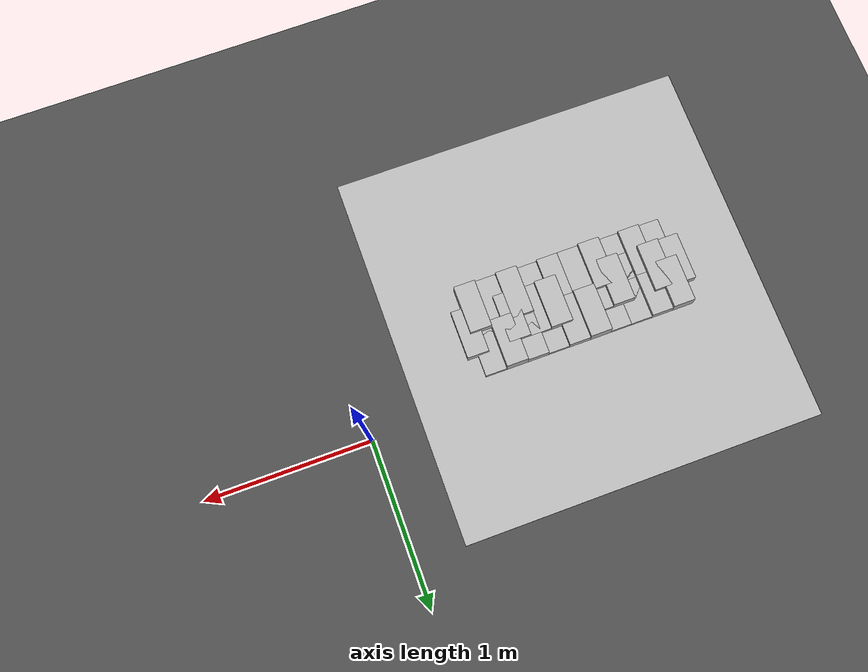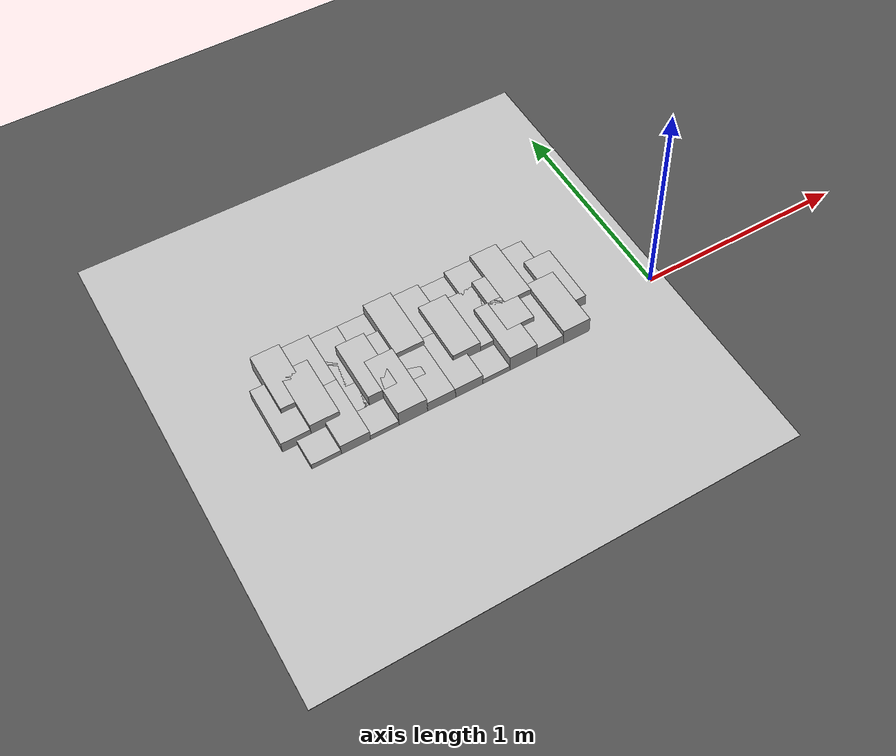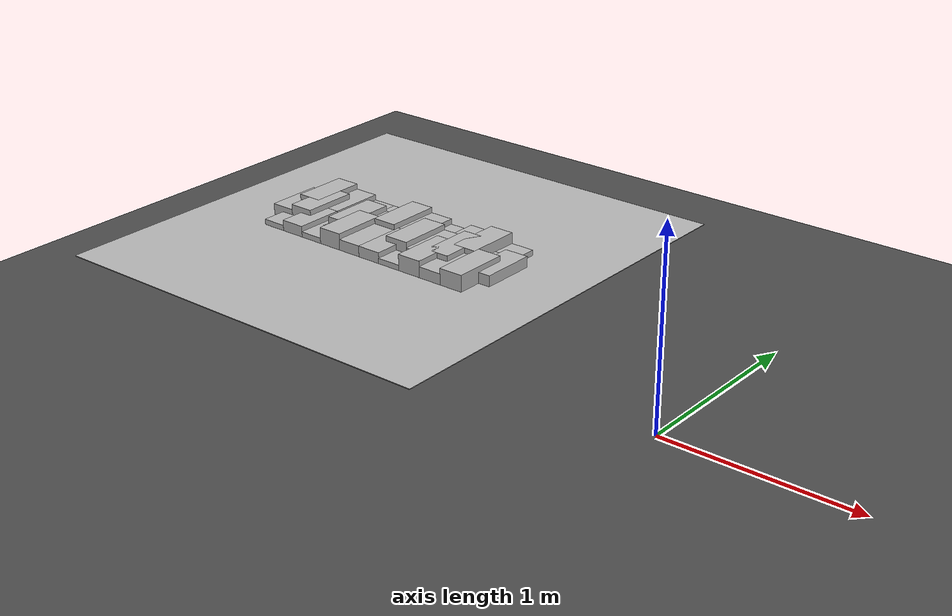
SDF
<sdf version="1.6">
 <world name="default">
  <model name="ground_plane">
   <static>1</static>
   <link name="link">
    <collision name="collision">
     <geometry><plane><normal>0 0 1</normal><size>100 100</size></plane></geometry>
     <surface><friction><ode><mu>100</mu><mu2>50</mu2></ode></friction></surface>
    </collision>
    <visual name="visual">
     <cast_shadows>0</cast_shadows>
     <geometry><plane><normal>0 0 1</normal><size>100 100</size></plane></geometry>
     <material>
      <script><uri>file://media/materials/scripts/gazebo.material</uri><name>Gazebo/Grey</name></script>
     </material>
    </visual>
   </link>
  </model>
  <model name="frc2016_roughterrain_0">
   <link name="link_clone_5">
    <pose>-1.14965 -0.263323 -0.073164 0 -0 0</pose>
    <inertial>
     <inertia><ixx>nan</ixx><ixy>0</ixy><ixz>0</ixz><iyy>nan</iyy><iyz>0</iyz><izz>nan</izz></inertia>
     <mass>0</mass>
    </inertial>
    <visual name="row1_block6_lg">
     <pose>-0.05715 0.1143 0.12238 0 -0 0</pose>
     <geometry><box><size>0.115452 0.257474 0.0762</size></box></geometry>
     <material><shader type="pixel"/></material>
    </visual>
    <visual name="row1_block2_lg">
     <pose>0.40005 0.1143 0.12238 0 -0 0</pose>
     <geometry><box><size>0.115452 0.257474 0.0762</size></box></geometry>
     <material><shader type="pixel"/></material>
    </visual>
    <visual name="row1_block4_sm">
     <pose>0.17145 0.1143 0.09698 0 -0 0</pose>
     <geometry><box><size>0.115452 0.257474 0.0254</size></box></geometry>
     <material><shader type="pixel"/></material>
    </visual>
    <visual name="row1_block5_md">
     <pose>0.05715 0.1143 0.10968 0 -0 0</pose>
     <geometry><box><size>0.115452 0.257474 0.0508</size></box></geometry>
     <material><shader type="pixel"/></material>
    </visual>
    <visual name="row1_block3_md">
     <pose>0.28575 0.1143 0.10968 0 -0 0</pose>
     <geometry><box><size>0.115452 0.257474 0.0508</size></box></geometry>
     <material><shader type="pixel"/></material>
    </visual>
    <visual name="platform">
     <pose>0 0 0.08269 0 -0 0</pose>
     <geometry><box><size>1.91826 2.01688 0.003175</size></box></geometry>
     <material><shader type="pixel"/></material>
    </visual>
    <visual name="row1_block1_sm">
     <pose>0.51435 0.1143 0.09698 0 -0 0</pose>
     <geometry><box><size>0.115452 0.257474 0.0254</size></box></geometry>
     <material><shader type="pixel"/></material>
    </visual>
    <visual name="row1_block8_sm">
     <pose>-0.28575 0.1143 0.09698 0 -0 0</pose>
     <geometry><box><size>0.115452 0.257474 0.0254</size></box></geometry>
     <material><shader type="pixel"/></material>
    </visual>
    <visual name="row1_block7_sm">
     <pose>-0.17145 0.1143 0.09698 0 -0 0</pose>
     <geometry><box><size>0.115452 0.257474 0.0254</size></box></geometry>
     <material><shader type="pixel"/></material>
    </visual>
    <visual name="row1_block9_md">
     <pose>-0.40005 0.1143 0.10968 0 -0 0</pose>
     <geometry><box><size>0.115452 0.257474 0.0508</size></box></geometry>
     <material><shader type="pixel"/></material>
    </visual>
    <visual name="row1_block10_lg">
     <pose>-0.51435 0.1143 0.12238 0 -0 0</pose>
     <geometry><box><size>0.115452 0.257474 0.0762</size></box></geometry>
     <material><shader type="pixel"/></material>
    </visual>
    <visual name="row2_block1_md">
     <pose>0.5715 0 0.10968 0 -0 0</pose>
     <geometry><box><size>0.115452 0.257474 0.0508</size></box></geometry>
     <material><shader type="pixel"/></material>
    </visual>
    <visual name="row2_block2_sm">
     <pose>0.4572 0 0.09698 0 -0 0</pose>
     <geometry><box><size>0.115452 0.257474 0.0254</size></box></geometry>
     <material><shader type="pixel"/></material>
    </visual>
    <visual name="row2_block3_lg">
     <pose>0.3429 0 0.12238 0 -0 0</pose>
     <geometry><box><size>0.115452 0.257474 0.0762</size></box></geometry>
     <material><shader type="pixel"/></material>
    </visual>
    <visual name="row2_block4_md">
     <pose>0.2286 0 0.10968 0 -0 0</pose>
     <geometry><box><size>0.115452 0.257474 0.0508</size></box></geometry>
     <material><shader type="pixel"/></material>
    </visual>
    <visual name="row2_block5_lg">
     <pose>0.1143 0 0.12238 0 -0 0</pose>
     <geometry><box><size>0.115452 0.257474 0.0762</size></box></geometry>
     <material><shader type="pixel"/></material>
    </visual>
    <visual name="row2_block6_sm">
     <pose>0 0 0.09698 0 -0 0</pose>
     <geometry><box><size>0.115452 0.257474 0.0254</size></box></geometry>
     <material><shader type="pixel"/></material>
    </visual>
    <visual name="row2_block7_md">
     <pose>-0.1143 0 0.10968 0 -0 0</pose>
     <geometry><box><size>0.115452 0.257474 0.0508</size></box></geometry>
     <material><shader type="pixel"/></material>
    </visual>
    <visual name="row2_block8_lg">
     <pose>-0.2286 0 0.12238 0 -0 0</pose>
     <geometry><box><size>0.115452 0.257474 0.0762</size></box></geometry>
     <material><shader type="pixel"/></material>
    </visual>
    <visual name="row2_block9_sm">
     <pose>-0.3429 0 0.09698 0 -0 0</pose>
     <geometry><box><size>0.115452 0.257474 0.0254</size></box></geometry>
     <material><shader type="pixel"/></material>
    </visual>
    <visual name="row2_block10_lg">
     <pose>-0.4572 0 0.12238 0 -0 0</pose>
     <geometry><box><size>0.115452 0.257474 0.0762</size></box></geometry>
     <material><shader type="pixel"/></material>
    </visual>
    <visual name="row2_block11_md">
     <pose>-0.5715 0 0.10968 0 -0 0</pose>
     <geometry><box><size>0.115452 0.257474 0.0508</size></box></geometry>
     <material><shader type="pixel"/></material>
    </visual>
    <visual name="row3_block2_md">
     <pose>0.40005 -0.1143 0.10968 0 -0 0</pose>
     <geometry><box><size>0.115452 0.257474 0.0508</size></box></geometry>
     <material><shader type="pixel"/></material>
    </visual>
    <visual name="row3_block1_lg">
     <pose>0.51435 -0.1143 0.12238 0 -0 0</pose>
     <geometry><box><size>0.115452 0.257474 0.0762</size></box></geometry>
     <material><shader type="pixel"/></material>
    </visual>
    <visual name="row3_block3_lg">
     <pose>0.28575 -0.1143 0.12238 0 -0 0</pose>
     <geometry><box><size>0.115452 0.257474 0.0762</size></box></geometry>
     <material><shader type="pixel"/></material>
    </visual>
    <visual name="row3_block4_sm">
     <pose>0.17145 -0.1143 0.09698 0 -0 0</pose>
     <geometry><box><size>0.115452 0.257474 0.0254</size></box></geometry>
     <material><shader type="pixel"/></material>
    </visual>
    <visual name="row3_block5_md">
     <pose>0.05715 -0.1143 0.10968 0 -0 0</pose>
     <geometry><box><size>0.115452 0.257474 0.0508</size></box></geometry>
     <material><shader type="pixel"/></material>
    </visual>
    <visual name="row3_block6_md">
     <pose>-0.05715 -0.1143 0.10968 0 -0 0</pose>
     <geometry><box><size>0.115452 0.257474 0.0508</size></box></geometry>
     <material><shader type="pixel"/></material>
    </visual>
    <visual name="row3_block8_sm">
     <pose>-0.28575 -0.1143 0.09698 0 -0 0</pose>
     <geometry><box><size>0.115452 0.257474 0.0254</size></box></geometry>
     <material><shader type="pixel"/></material>
    </visual>
    <visual name="row3_block7_lg">
     <pose>-0.17145 -0.1143 0.12238 0 -0 0</pose>
     <geometry><box><size>0.115452 0.257474 0.0762</size></box></geometry>
     <material><shader type="pixel"/></material>
    </visual>
    <visual name="row3_block10_sm">
     <pose>-0.51435 -0.1143 0.09698 0 -0 0</pose>
     <geometry><box><size>0.115452 0.257474 0.0254</size></box></geometry>
     <material><shader type="pixel"/></material>
    </visual>
    <visual name="row3_block9_md">
     <pose>-0.40005 -0.1143 0.10968 0 -0 0</pose>
     <geometry><box><size>0.115452 0.257474 0.0508</size></box></geometry>
     <material><shader type="pixel"/></material>
    </visual>
    <collision name="row1_block6_lg_0">
     <pose>-0.05715 0.1143 0.12238 0 -0 0</pose>
     <geometry><box><size>0.115452 0.257474 0.0762</size></box></geometry>
     <surface>
      <friction>
       <ode><mu>1</mu><mu2>1</mu2><fdir1>0 0 0</fdir1><slip1>0</slip1><slip2>0</slip2></ode>
       <torsional>
        <coefficient>1</coefficient>
        <patch_radius>0</patch_radius>
        <surface_radius>0</surface_radius>
        <use_patch_radius>1</use_patch_radius>
        <ode><slip>0</slip></ode>
       </torsional>
      </friction>
      <bounce><restitution_coefficient>0</restitution_coefficient><threshold>1e+06</threshold></bounce>
      <contact>
       <collide_without_contact>0</collide_without_contact>
       <collide_without_contact_bitmask>1</collide_without_contact_bitmask>
       <collide_bitmask>1</collide_bitmask>
       <ode>
        <soft_cfm>0</soft_cfm>
        <soft_erp>0.2</soft_erp>
        <kp>1e+13</kp>
        <kd>1</kd>
        <max_vel>0.01</max_vel>
        <min_depth>0</min_depth>
       </ode>
       <bullet>
        <split_impulse>1</split_impulse>
        <split_impulse_penetration_threshold>-0.01</split_impulse_penetration_threshold>
        <soft_cfm>0</soft_cfm>
        <soft_erp>0.2</soft_erp>
        <kp>1e+13</kp>
        <kd>1</kd>
       </bullet>
      </contact>
     </surface>
    </collision>
    <collision name="row2_block3_lg_0">
     <pose>0.3429 0 0.12238 0 -0 0</pose>
     <geometry><box><size>0.115452 0.257474 0.0762</size></box></geometry>
     <surface>
      <friction>
       <ode><mu>1</mu><mu2>1</mu2><fdir1>0 0 0</fdir1><slip1>0</slip1><slip2>0</slip2></ode>
       <torsional>
        <coefficient>1</coefficient>
        <patch_radius>0</patch_radius>
        <surface_radius>0</surface_radius>
        <use_patch_radius>1</use_patch_radius>
        <ode><slip>0</slip></ode>
       </torsional>
      </friction>
      <bounce><restitution_coefficient>0</restitution_coefficient><threshold>1e+06</threshold></bounce>
      <contact>
       <collide_without_contact>0</collide_without_contact>
       <collide_without_contact_bitmask>1</collide_without_contact_bitmask>
       <collide_bitmask>1</collide_bitmask>
       <ode>
        <soft_cfm>0</soft_cfm>
        <soft_erp>0.2</soft_erp>
        <kp>1e+13</kp>
        <kd>1</kd>
        <max_vel>0.01</max_vel>
        <min_depth>0</min_depth>
       </ode>
       <bullet>
        <split_impulse>1</split_impulse>
        <split_impulse_penetration_threshold>-0.01</split_impulse_penetration_threshold>
        <soft_cfm>0</soft_cfm>
        <soft_erp>0.2</soft_erp>
        <kp>1e+13</kp>
        <kd>1</kd>
       </bullet>
      </contact>
     </surface>
    </collision>
    <collision name="row2_block6_sm_0">
     <pose>0 0 0.09698 0 -0 0</pose>
     <geometry><box><size>0.115452 0.257474 0.0254</size></box></geometry>
     <surface>
      <friction>
       <ode><mu>1</mu><mu2>1</mu2><fdir1>0 0 0</fdir1><slip1>0</slip1><slip2>0</slip2></ode>
       <torsional>
        <coefficient>1</coefficient>
        <patch_radius>0</patch_radius>
        <surface_radius>0</surface_radius>
        <use_patch_radius>1</use_patch_radius>
        <ode><slip>0</slip></ode>
       </torsional>
      </friction>
      <bounce><restitution_coefficient>0</restitution_coefficient><threshold>1e+06</threshold></bounce>
      <contact>
       <collide_without_contact>0</collide_without_contact>
       <collide_without_contact_bitmask>1</collide_without_contact_bitmask>
       <collide_bitmask>1</collide_bitmask>
       <ode>
        <soft_cfm>0</soft_cfm>
        <soft_erp>0.2</soft_erp>
        <kp>1e+13</kp>
        <kd>1</kd>
        <max_vel>0.01</max_vel>
        <min_depth>0</min_depth>
       </ode>
       <bullet>
        <split_impulse>1</split_impulse>
        <split_impulse_penetration_threshold>-0.01</split_impulse_penetration_threshold>
        <soft_cfm>0</soft_cfm>
        <soft_erp>0.2</soft_erp>
        <kp>1e+13</kp>
        <kd>1</kd>
       </bullet>
      </contact>
     </surface>
    </collision>
    <collision name="row2_block5_lg_0">
     <pose>0.1143 0 0.12238 0 -0 0</pose>
     <geometry><box><size>0.115452 0.257474 0.0762</size></box></geometry>
     <surface>
      <friction>
       <ode><mu>1</mu><mu2>1</mu2><fdir1>0 0 0</fdir1><slip1>0</slip1><slip2>0</slip2></ode>
       <torsional>
        <coefficient>1</coefficient>
        <patch_radius>0</patch_radius>
        <surface_radius>0</surface_radius>
        <use_patch_radius>1</use_patch_radius>
        <ode><slip>0</slip></ode>
       </torsional>
      </friction>
      <bounce><restitution_coefficient>0</restitution_coefficient><threshold>1e+06</threshold></bounce>
      <contact>
       <collide_without_contact>0</collide_without_contact>
       <collide_without_contact_bitmask>1</collide_without_contact_bitmask>
       <collide_bitmask>1</collide_bitmask>
       <ode>
        <soft_cfm>0</soft_cfm>
        <soft_erp>0.2</soft_erp>
        <kp>1e+13</kp>
        <kd>1</kd>
        <max_vel>0.01</max_vel>
        <min_depth>0</min_depth>
       </ode>
       <bullet>
        <split_impulse>1</split_impulse>
        <split_impulse_penetration_threshold>-0.01</split_impulse_penetration_threshold>
        <soft_cfm>0</soft_cfm>
        <soft_erp>0.2</soft_erp>
        <kp>1e+13</kp>
        <kd>1</kd>
       </bullet>
      </contact>
     </surface>
    </collision>
    <collision name="platform_0">
     <pose>0 0 0.08269 0 -0 0</pose>
     <geometry><box><size>1.91826 2.01688 0.003175</size></box></geometry>
     <surface>
      <friction>
       <ode><mu>1</mu><mu2>1</mu2><fdir1>0 0 0</fdir1><slip1>0</slip1><slip2>0</slip2></ode>
       <torsional>
        <coefficient>1</coefficient>
        <patch_radius>0</patch_radius>
        <surface_radius>0</surface_radius>
        <use_patch_radius>1</use_patch_radius>
        <ode><slip>0</slip></ode>
       </torsional>
      </friction>
      <bounce><restitution_coefficient>0</restitution_coefficient><threshold>1e+06</threshold></bounce>
      <contact>
       <collide_without_contact>0</collide_without_contact>
       <collide_without_contact_bitmask>1</collide_without_contact_bitmask>
       <collide_bitmask>1</collide_bitmask>
       <ode>
        <soft_cfm>0</soft_cfm>
        <soft_erp>0.2</soft_erp>
        <kp>1e+13</kp>
        <kd>1</kd>
        <max_vel>0.01</max_vel>
        <min_depth>0</min_depth>
       </ode>
       <bullet>
        <split_impulse>1</split_impulse>
        <split_impulse_penetration_threshold>-0.01</split_impulse_penetration_threshold>
        <soft_cfm>0</soft_cfm>
        <soft_erp>0.2</soft_erp>
        <kp>1e+13</kp>
        <kd>1</kd>
       </bullet>
      </contact>
     </surface>
    </collision>
    <collision name="row1_block1_sm_0">
     <pose>0.51435 0.1143 0.09698 0 -0 0</pose>
     <geometry><box><size>0.115452 0.257474 0.0254</size></box></geometry>
     <surface>
      <friction>
       <ode><mu>1</mu><mu2>1</mu2><fdir1>0 0 0</fdir1><slip1>0</slip1><slip2>0</slip2></ode>
       <torsional>
        <coefficient>1</coefficient>
        <patch_radius>0</patch_radius>
        <surface_radius>0</surface_radius>
        <use_patch_radius>1</use_patch_radius>
        <ode><slip>0</slip></ode>
       </torsional>
      </friction>
      <bounce><restitution_coefficient>0</restitution_coefficient><threshold>1e+06</threshold></bounce>
      <contact>
       <collide_without_contact>0</collide_without_contact>
       <collide_without_contact_bitmask>1</collide_without_contact_bitmask>
       <collide_bitmask>1</collide_bitmask>
       <ode>
        <soft_cfm>0</soft_cfm>
        <soft_erp>0.2</soft_erp>
        <kp>1e+13</kp>
        <kd>1</kd>
        <max_vel>0.01</max_vel>
        <min_depth>0</min_depth>
       </ode>
       <bullet>
        <split_impulse>1</split_impulse>
        <split_impulse_penetration_threshold>-0.01</split_impulse_penetration_threshold>
        <soft_cfm>0</soft_cfm>
        <soft_erp>0.2</soft_erp>
        <kp>1e+13</kp>
        <kd>1</kd>
       </bullet>
      </contact>
     </surface>
    </collision>
    <collision name="row1_block3_md_0">
     <pose>0.28575 0.1143 0.10968 0 -0 0</pose>
     <geometry><box><size>0.115452 0.257474 0.0508</size></box></geometry>
     <surface>
      <friction>
       <ode><mu>1</mu><mu2>1</mu2><fdir1>0 0 0</fdir1><slip1>0</slip1><slip2>0</slip2></ode>
       <torsional>
        <coefficient>1</coefficient>
        <patch_radius>0</patch_radius>
        <surface_radius>0</surface_radius>
        <use_patch_radius>1</use_patch_radius>
        <ode><slip>0</slip></ode>
       </torsional>
      </friction>
      <bounce><restitution_coefficient>0</restitution_coefficient><threshold>1e+06</threshold></bounce>
      <contact>
       <collide_without_contact>0</collide_without_contact>
       <collide_without_contact_bitmask>1</collide_without_contact_bitmask>
       <collide_bitmask>1</collide_bitmask>
       <ode>
        <soft_cfm>0</soft_cfm>
        <soft_erp>0.2</soft_erp>
        <kp>1e+13</kp>
        <kd>1</kd>
        <max_vel>0.01</max_vel>
        <min_depth>0</min_depth>
       </ode>
       <bullet>
        <split_impulse>1</split_impulse>
        <split_impulse_penetration_threshold>-0.01</split_impulse_penetration_threshold>
        <soft_cfm>0</soft_cfm>
        <soft_erp>0.2</soft_erp>
        <kp>1e+13</kp>
        <kd>1</kd>
       </bullet>
      </contact>
     </surface>
    </collision>
    <collision name="row1_block2_lg_0">
     <pose>0.40005 0.1143 0.12238 0 -0 0</pose>
     <geometry><box><size>0.115452 0.257474 0.0762</size></box></geometry>
     <surface>
      <friction>
       <ode><mu>1</mu><mu2>1</mu2><fdir1>0 0 0</fdir1><slip1>0</slip1><slip2>0</slip2></ode>
       <torsional>
        <coefficient>1</coefficient>
        <patch_radius>0</patch_radius>
        <surface_radius>0</surface_radius>
        <use_patch_radius>1</use_patch_radius>
        <ode><slip>0</slip></ode>
       </torsional>
      </friction>
      <bounce><restitution_coefficient>0</restitution_coefficient><threshold>1e+06</threshold></bounce>
      <contact>
       <collide_without_contact>0</collide_without_contact>
       <collide_without_contact_bitmask>1</collide_without_contact_bitmask>
       <collide_bitmask>1</collide_bitmask>
       <ode>
        <soft_cfm>0</soft_cfm>
        <soft_erp>0.2</soft_erp>
        <kp>1e+13</kp>
        <kd>1</kd>
        <max_vel>0.01</max_vel>
        <min_depth>0</min_depth>
       </ode>
       <bullet>
        <split_impulse>1</split_impulse>
        <split_impulse_penetration_threshold>-0.01</split_impulse_penetration_threshold>
        <soft_cfm>0</soft_cfm>
        <soft_erp>0.2</soft_erp>
        <kp>1e+13</kp>
        <kd>1</kd>
       </bullet>
      </contact>
     </surface>
    </collision>
    <collision name="row1_block5_md_0">
     <pose>0.05715 0.1143 0.10968 0 -0 0</pose>
     <geometry><box><size>0.115452 0.257474 0.0508</size></box></geometry>
     <surface>
      <friction>
       <ode><mu>1</mu><mu2>1</mu2><fdir1>0 0 0</fdir1><slip1>0</slip1><slip2>0</slip2></ode>
       <torsional>
        <coefficient>1</coefficient>
        <patch_radius>0</patch_radius>
        <surface_radius>0</surface_radius>
        <use_patch_radius>1</use_patch_radius>
        <ode><slip>0</slip></ode>
       </torsional>
      </friction>
      <bounce><restitution_coefficient>0</restitution_coefficient><threshold>1e+06</threshold></bounce>
      <contact>
       <collide_without_contact>0</collide_without_contact>
       <collide_without_contact_bitmask>1</collide_without_contact_bitmask>
       <collide_bitmask>1</collide_bitmask>
       <ode>
        <soft_cfm>0</soft_cfm>
        <soft_erp>0.2</soft_erp>
        <kp>1e+13</kp>
        <kd>1</kd>
        <max_vel>0.01</max_vel>
        <min_depth>0</min_depth>
       </ode>
       <bullet>
        <split_impulse>1</split_impulse>
        <split_impulse_penetration_threshold>-0.01</split_impulse_penetration_threshold>
        <soft_cfm>0</soft_cfm>
        <soft_erp>0.2</soft_erp>
        <kp>1e+13</kp>
        <kd>1</kd>
       </bullet>
      </contact>
     </surface>
    </collision>
    <collision name="row1_block4_sm_0">
     <pose>0.17145 0.1143 0.09698 0 -0 0</pose>
     <geometry><box><size>0.115452 0.257474 0.0254</size></box></geometry>
     <surface>
      <friction>
       <ode><mu>1</mu><mu2>1</mu2><fdir1>0 0 0</fdir1><slip1>0</slip1><slip2>0</slip2></ode>
       <torsional>
        <coefficient>1</coefficient>
        <patch_radius>0</patch_radius>
        <surface_radius>0</surface_radius>
        <use_patch_radius>1</use_patch_radius>
        <ode><slip>0</slip></ode>
       </torsional>
      </friction>
      <bounce><restitution_coefficient>0</restitution_coefficient><threshold>1e+06</threshold></bounce>
      <contact>
       <collide_without_contact>0</collide_without_contact>
       <collide_without_contact_bitmask>1</collide_without_contact_bitmask>
       <collide_bitmask>1</collide_bitmask>
       <ode>
        <soft_cfm>0</soft_cfm>
        <soft_erp>0.2</soft_erp>
        <kp>1e+13</kp>
        <kd>1</kd>
        <max_vel>0.01</max_vel>
        <min_depth>0</min_depth>
       </ode>
       <bullet>
        <split_impulse>1</split_impulse>
        <split_impulse_penetration_threshold>-0.01</split_impulse_penetration_threshold>
        <soft_cfm>0</soft_cfm>
        <soft_erp>0.2</soft_erp>
        <kp>1e+13</kp>
        <kd>1</kd>
       </bullet>
      </contact>
     </surface>
    </collision>
    <collision name="row1_block7_sm_0">
     <pose>-0.17145 0.1143 0.09698 0 -0 0</pose>
     <geometry><box><size>0.115452 0.257474 0.0254</size></box></geometry>
     <surface>
      <friction>
       <ode><mu>1</mu><mu2>1</mu2><fdir1>0 0 0</fdir1><slip1>0</slip1><slip2>0</slip2></ode>
       <torsional>
        <coefficient>1</coefficient>
        <patch_radius>0</patch_radius>
        <surface_radius>0</surface_radius>
        <use_patch_radius>1</use_patch_radius>
        <ode><slip>0</slip></ode>
       </torsional>
      </friction>
      <bounce><restitution_coefficient>0</restitution_coefficient><threshold>1e+06</threshold></bounce>
      <contact>
       <collide_without_contact>0</collide_without_contact>
       <collide_without_contact_bitmask>1</collide_without_contact_bitmask>
       <collide_bitmask>1</collide_bitmask>
       <ode>
        <soft_cfm>0</soft_cfm>
        <soft_erp>0.2</soft_erp>
        <kp>1e+13</kp>
        <kd>1</kd>
        <max_vel>0.01</max_vel>
        <min_depth>0</min_depth>
       </ode>
       <bullet>
        <split_impulse>1</split_impulse>
        <split_impulse_penetration_threshold>-0.01</split_impulse_penetration_threshold>
        <soft_cfm>0</soft_cfm>
        <soft_erp>0.2</soft_erp>
        <kp>1e+13</kp>
        <kd>1</kd>
       </bullet>
      </contact>
     </surface>
    </collision>
    <collision name="row1_block8_sm_0">
     <pose>-0.28575 0.1143 0.09698 0 -0 0</pose>
     <geometry><box><size>0.115452 0.257474 0.0254</size></box></geometry>
     <surface>
      <friction>
       <ode><mu>1</mu><mu2>1</mu2><fdir1>0 0 0</fdir1><slip1>0</slip1><slip2>0</slip2></ode>
       <torsional>
        <coefficient>1</coefficient>
        <patch_radius>0</patch_radius>
        <surface_radius>0</surface_radius>
        <use_patch_radius>1</use_patch_radius>
        <ode><slip>0</slip></ode>
       </torsional>
      </friction>
      <bounce><restitution_coefficient>0</restitution_coefficient><threshold>1e+06</threshold></bounce>
      <contact>
       <collide_without_contact>0</collide_without_contact>
       <collide_without_contact_bitmask>1</collide_without_contact_bitmask>
       <collide_bitmask>1</collide_bitmask>
       <ode>
        <soft_cfm>0</soft_cfm>
        <soft_erp>0.2</soft_erp>
        <kp>1e+13</kp>
        <kd>1</kd>
        <max_vel>0.01</max_vel>
        <min_depth>0</min_depth>
       </ode>
       <bullet>
        <split_impulse>1</split_impulse>
        <split_impulse_penetration_threshold>-0.01</split_impulse_penetration_threshold>
        <soft_cfm>0</soft_cfm>
        <soft_erp>0.2</soft_erp>
        <kp>1e+13</kp>
        <kd>1</kd>
       </bullet>
      </contact>
     </surface>
    </collision>
    <collision name="row1_block10_lg_0">
     <pose>-0.51435 0.1143 0.12238 0 -0 0</pose>
     <geometry><box><size>0.115452 0.257474 0.0762</size></box></geometry>
     <surface>
      <friction>
       <ode><mu>1</mu><mu2>1</mu2><fdir1>0 0 0</fdir1><slip1>0</slip1><slip2>0</slip2></ode>
       <torsional>
        <coefficient>1</coefficient>
        <patch_radius>0</patch_radius>
        <surface_radius>0</surface_radius>
        <use_patch_radius>1</use_patch_radius>
        <ode><slip>0</slip></ode>
       </torsional>
      </friction>
      <bounce><restitution_coefficient>0</restitution_coefficient><threshold>1e+06</threshold></bounce>
      <contact>
       <collide_without_contact>0</collide_without_contact>
       <collide_without_contact_bitmask>1</collide_without_contact_bitmask>
       <collide_bitmask>1</collide_bitmask>
       <ode>
        <soft_cfm>0</soft_cfm>
        <soft_erp>0.2</soft_erp>
        <kp>1e+13</kp>
        <kd>1</kd>
        <max_vel>0.01</max_vel>
        <min_depth>0</min_depth>
       </ode>
       <bullet>
        <split_impulse>1</split_impulse>
        <split_impulse_penetration_threshold>-0.01</split_impulse_penetration_threshold>
        <soft_cfm>0</soft_cfm>
        <soft_erp>0.2</soft_erp>
        <kp>1e+13</kp>
        <kd>1</kd>
       </bullet>
      </contact>
     </surface>
    </collision>
    <collision name="row1_block9_md_0">
     <pose>-0.40005 0.1143 0.10968 0 -0 0</pose>
     <geometry><box><size>0.115452 0.257474 0.0508</size></box></geometry>
     <surface>
      <friction>
       <ode><mu>1</mu><mu2>1</mu2><fdir1>0 0 0</fdir1><slip1>0</slip1><slip2>0</slip2></ode>
       <torsional>
        <coefficient>1</coefficient>
        <patch_radius>0</patch_radius>
        <surface_radius>0</surface_radius>
        <use_patch_radius>1</use_patch_radius>
        <ode><slip>0</slip></ode>
       </torsional>
      </friction>
      <bounce><restitution_coefficient>0</restitution_coefficient><threshold>1e+06</threshold></bounce>
      <contact>
       <collide_without_contact>0</collide_without_contact>
       <collide_without_contact_bitmask>1</collide_without_contact_bitmask>
       <collide_bitmask>1</collide_bitmask>
       <ode>
        <soft_cfm>0</soft_cfm>
        <soft_erp>0.2</soft_erp>
        <kp>1e+13</kp>
        <kd>1</kd>
        <max_vel>0.01</max_vel>
        <min_depth>0</min_depth>
       </ode>
       <bullet>
        <split_impulse>1</split_impulse>
        <split_impulse_penetration_threshold>-0.01</split_impulse_penetration_threshold>
        <soft_cfm>0</soft_cfm>
        <soft_erp>0.2</soft_erp>
        <kp>1e+13</kp>
        <kd>1</kd>
       </bullet>
      </contact>
     </surface>
    </collision>
    <collision name="row2_block4_md_0">
     <pose>0.2286 0 0.10968 0 -0 0</pose>
     <geometry><box><size>0.115452 0.257474 0.0508</size></box></geometry>
     <surface>
      <friction>
       <ode><mu>1</mu><mu2>1</mu2><fdir1>0 0 0</fdir1><slip1>0</slip1><slip2>0</slip2></ode>
       <torsional>
        <coefficient>1</coefficient>
        <patch_radius>0</patch_radius>
        <surface_radius>0</surface_radius>
        <use_patch_radius>1</use_patch_radius>
        <ode><slip>0</slip></ode>
       </torsional>
      </friction>
      <bounce><restitution_coefficient>0</restitution_coefficient><threshold>1e+06</threshold></bounce>
      <contact>
       <collide_without_contact>0</collide_without_contact>
       <collide_without_contact_bitmask>1</collide_without_contact_bitmask>
       <collide_bitmask>1</collide_bitmask>
       <ode>
        <soft_cfm>0</soft_cfm>
        <soft_erp>0.2</soft_erp>
        <kp>1e+13</kp>
        <kd>1</kd>
        <max_vel>0.01</max_vel>
        <min_depth>0</min_depth>
       </ode>
       <bullet>
        <split_impulse>1</split_impulse>
        <split_impulse_penetration_threshold>-0.01</split_impulse_penetration_threshold>
        <soft_cfm>0</soft_cfm>
        <soft_erp>0.2</soft_erp>
        <kp>1e+13</kp>
        <kd>1</kd>
       </bullet>
      </contact>
     </surface>
    </collision>
    <collision name="row2_block1_md_0">
     <pose>0.5715 0 0.10968 0 -0 0</pose>
     <geometry><box><size>0.115452 0.257474 0.0508</size></box></geometry>
     <surface>
      <friction>
       <ode><mu>1</mu><mu2>1</mu2><fdir1>0 0 0</fdir1><slip1>0</slip1><slip2>0</slip2></ode>
       <torsional>
        <coefficient>1</coefficient>
        <patch_radius>0</patch_radius>
        <surface_radius>0</surface_radius>
        <use_patch_radius>1</use_patch_radius>
        <ode><slip>0</slip></ode>
       </torsional>
      </friction>
      <bounce><restitution_coefficient>0</restitution_coefficient><threshold>1e+06</threshold></bounce>
      <contact>
       <collide_without_contact>0</collide_without_contact>
       <collide_without_contact_bitmask>1</collide_without_contact_bitmask>
       <collide_bitmask>1</collide_bitmask>
       <ode>
        <soft_cfm>0</soft_cfm>
        <soft_erp>0.2</soft_erp>
        <kp>1e+13</kp>
        <kd>1</kd>
        <max_vel>0.01</max_vel>
        <min_depth>0</min_depth>
       </ode>
       <bullet>
        <split_impulse>1</split_impulse>
        <split_impulse_penetration_threshold>-0.01</split_impulse_penetration_threshold>
        <soft_cfm>0</soft_cfm>
        <soft_erp>0.2</soft_erp>
        <kp>1e+13</kp>
        <kd>1</kd>
       </bullet>
      </contact>
     </surface>
    </collision>
    <collision name="row2_block2_sm_0">
     <pose>0.4572 0 0.09698 0 -0 0</pose>
     <geometry><box><size>0.115452 0.257474 0.0254</size></box></geometry>
     <surface>
      <friction>
       <ode><mu>1</mu><mu2>1</mu2><fdir1>0 0 0</fdir1><slip1>0</slip1><slip2>0</slip2></ode>
       <torsional>
        <coefficient>1</coefficient>
        <patch_radius>0</patch_radius>
        <surface_radius>0</surface_radius>
        <use_patch_radius>1</use_patch_radius>
        <ode><slip>0</slip></ode>
       </torsional>
      </friction>
      <bounce><restitution_coefficient>0</restitution_coefficient><threshold>1e+06</threshold></bounce>
      <contact>
       <collide_without_contact>0</collide_without_contact>
       <collide_without_contact_bitmask>1</collide_without_contact_bitmask>
       <collide_bitmask>1</collide_bitmask>
       <ode>
        <soft_cfm>0</soft_cfm>
        <soft_erp>0.2</soft_erp>
        <kp>1e+13</kp>
        <kd>1</kd>
        <max_vel>0.01</max_vel>
        <min_depth>0</min_depth>
       </ode>
       <bullet>
        <split_impulse>1</split_impulse>
        <split_impulse_penetration_threshold>-0.01</split_impulse_penetration_threshold>
        <soft_cfm>0</soft_cfm>
        <soft_erp>0.2</soft_erp>
        <kp>1e+13</kp>
        <kd>1</kd>
       </bullet>
      </contact>
     </surface>
    </collision>
    <collision name="row2_block7_md_0">
     <pose>-0.1143 0 0.10968 0 -0 0</pose>
     <geometry><box><size>0.115452 0.257474 0.0508</size></box></geometry>
     <surface>
      <friction>
       <ode><mu>1</mu><mu2>1</mu2><fdir1>0 0 0</fdir1><slip1>0</slip1><slip2>0</slip2></ode>
       <torsional>
        <coefficient>1</coefficient>
        <patch_radius>0</patch_radius>
        <surface_radius>0</surface_radius>
        <use_patch_radius>1</use_patch_radius>
        <ode><slip>0</slip></ode>
       </torsional>
      </friction>
      <bounce><restitution_coefficient>0</restitution_coefficient><threshold>1e+06</threshold></bounce>
      <contact>
       <collide_without_contact>0</collide_without_contact>
       <collide_without_contact_bitmask>1</collide_without_contact_bitmask>
       <collide_bitmask>1</collide_bitmask>
       <ode>
        <soft_cfm>0</soft_cfm>
        <soft_erp>0.2</soft_erp>
        <kp>1e+13</kp>
        <kd>1</kd>
        <max_vel>0.01</max_vel>
        <min_depth>0</min_depth>
       </ode>
       <bullet>
        <split_impulse>1</split_impulse>
        <split_impulse_penetration_threshold>-0.01</split_impulse_penetration_threshold>
        <soft_cfm>0</soft_cfm>
        <soft_erp>0.2</soft_erp>
        <kp>1e+13</kp>
        <kd>1</kd>
       </bullet>
      </contact>
     </surface>
    </collision>
    <collision name="row2_block10_lg_0">
     <pose>-0.4572 0 0.12238 0 -0 0</pose>
     <geometry><box><size>0.115452 0.257474 0.0762</size></box></geometry>
     <surface>
      <friction>
       <ode><mu>1</mu><mu2>1</mu2><fdir1>0 0 0</fdir1><slip1>0</slip1><slip2>0</slip2></ode>
       <torsional>
        <coefficient>1</coefficient>
        <patch_radius>0</patch_radius>
        <surface_radius>0</surface_radius>
        <use_patch_radius>1</use_patch_radius>
        <ode><slip>0</slip></ode>
       </torsional>
      </friction>
      <bounce><restitution_coefficient>0</restitution_coefficient><threshold>1e+06</threshold></bounce>
      <contact>
       <collide_without_contact>0</collide_without_contact>
       <collide_without_contact_bitmask>1</collide_without_contact_bitmask>
       <collide_bitmask>1</collide_bitmask>
       <ode>
        <soft_cfm>0</soft_cfm>
        <soft_erp>0.2</soft_erp>
        <kp>1e+13</kp>
        <kd>1</kd>
        <max_vel>0.01</max_vel>
        <min_depth>0</min_depth>
       </ode>
       <bullet>
        <split_impulse>1</split_impulse>
        <split_impulse_penetration_threshold>-0.01</split_impulse_penetration_threshold>
        <soft_cfm>0</soft_cfm>
        <soft_erp>0.2</soft_erp>
        <kp>1e+13</kp>
        <kd>1</kd>
       </bullet>
      </contact>
     </surface>
    </collision>
    <collision name="row2_block8_lg_0">
     <pose>-0.2286 0 0.12238 0 -0 0</pose>
     <geometry><box><size>0.115452 0.257474 0.0762</size></box></geometry>
     <surface>
      <friction>
       <ode><mu>1</mu><mu2>1</mu2><fdir1>0 0 0</fdir1><slip1>0</slip1><slip2>0</slip2></ode>
       <torsional>
        <coefficient>1</coefficient>
        <patch_radius>0</patch_radius>
        <surface_radius>0</surface_radius>
        <use_patch_radius>1</use_patch_radius>
        <ode><slip>0</slip></ode>
       </torsional>
      </friction>
      <bounce><restitution_coefficient>0</restitution_coefficient><threshold>1e+06</threshold></bounce>
      <contact>
       <collide_without_contact>0</collide_without_contact>
       <collide_without_contact_bitmask>1</collide_without_contact_bitmask>
       <collide_bitmask>1</collide_bitmask>
       <ode>
        <soft_cfm>0</soft_cfm>
        <soft_erp>0.2</soft_erp>
        <kp>1e+13</kp>
        <kd>1</kd>
        <max_vel>0.01</max_vel>
        <min_depth>0</min_depth>
       </ode>
       <bullet>
        <split_impulse>1</split_impulse>
        <split_impulse_penetration_threshold>-0.01</split_impulse_penetration_threshold>
        <soft_cfm>0</soft_cfm>
        <soft_erp>0.2</soft_erp>
        <kp>1e+13</kp>
        <kd>1</kd>
       </bullet>
      </contact>
     </surface>
    </collision>
    <collision name="row2_block9_sm_0">
     <pose>-0.3429 0 0.09698 0 -0 0</pose>
     <geometry><box><size>0.115452 0.257474 0.0254</size></box></geometry>
     <surface>
      <friction>
       <ode><mu>1</mu><mu2>1</mu2><fdir1>0 0 0</fdir1><slip1>0</slip1><slip2>0</slip2></ode>
       <torsional>
        <coefficient>1</coefficient>
        <patch_radius>0</patch_radius>
        <surface_radius>0</surface_radius>
        <use_patch_radius>1</use_patch_radius>
        <ode><slip>0</slip></ode>
       </torsional>
      </friction>
      <bounce><restitution_coefficient>0</restitution_coefficient><threshold>1e+06</threshold></bounce>
      <contact>
       <collide_without_contact>0</collide_without_contact>
       <collide_without_contact_bitmask>1</collide_without_contact_bitmask>
       <collide_bitmask>1</collide_bitmask>
       <ode>
        <soft_cfm>0</soft_cfm>
        <soft_erp>0.2</soft_erp>
        <kp>1e+13</kp>
        <kd>1</kd>
        <max_vel>0.01</max_vel>
        <min_depth>0</min_depth>
       </ode>
       <bullet>
        <split_impulse>1</split_impulse>
        <split_impulse_penetration_threshold>-0.01</split_impulse_penetration_threshold>
        <soft_cfm>0</soft_cfm>
        <soft_erp>0.2</soft_erp>
        <kp>1e+13</kp>
        <kd>1</kd>
       </bullet>
      </contact>
     </surface>
    </collision>
    <collision name="row2_block11_md_0">
     <pose>-0.5715 0 0.10968 0 -0 0</pose>
     <geometry><box><size>0.115452 0.257474 0.0508</size></box></geometry>
     <surface>
      <friction>
       <ode><mu>1</mu><mu2>1</mu2><fdir1>0 0 0</fdir1><slip1>0</slip1><slip2>0</slip2></ode>
       <torsional>
        <coefficient>1</coefficient>
        <patch_radius>0</patch_radius>
        <surface_radius>0</surface_radius>
        <use_patch_radius>1</use_patch_radius>
        <ode><slip>0</slip></ode>
       </torsional>
      </friction>
      <bounce><restitution_coefficient>0</restitution_coefficient><threshold>1e+06</threshold></bounce>
      <contact>
       <collide_without_contact>0</collide_without_contact>
       <collide_without_contact_bitmask>1</collide_without_contact_bitmask>
       <collide_bitmask>1</collide_bitmask>
       <ode>
        <soft_cfm>0</soft_cfm>
        <soft_erp>0.2</soft_erp>
        <kp>1e+13</kp>
        <kd>1</kd>
        <max_vel>0.01</max_vel>
        <min_depth>0</min_depth>
       </ode>
       <bullet>
        <split_impulse>1</split_impulse>
        <split_impulse_penetration_threshold>-0.01</split_impulse_penetration_threshold>
        <soft_cfm>0</soft_cfm>
        <soft_erp>0.2</soft_erp>
        <kp>1e+13</kp>
        <kd>1</kd>
       </bullet>
      </contact>
     </surface>
    </collision>
    <collision name="row3_block3_lg_0">
     <pose>0.28575 -0.1143 0.12238 0 -0 0</pose>
     <geometry><box><size>0.115452 0.257474 0.0762</size></box></geometry>
     <surface>
      <friction>
       <ode><mu>1</mu><mu2>1</mu2><fdir1>0 0 0</fdir1><slip1>0</slip1><slip2>0</slip2></ode>
       <torsional>
        <coefficient>1</coefficient>
        <patch_radius>0</patch_radius>
        <surface_radius>0</surface_radius>
        <use_patch_radius>1</use_patch_radius>
        <ode><slip>0</slip></ode>
       </torsional>
      </friction>
      <bounce><restitution_coefficient>0</restitution_coefficient><threshold>1e+06</threshold></bounce>
      <contact>
       <collide_without_contact>0</collide_without_contact>
       <collide_without_contact_bitmask>1</collide_without_contact_bitmask>
       <collide_bitmask>1</collide_bitmask>
       <ode>
        <soft_cfm>0</soft_cfm>
        <soft_erp>0.2</soft_erp>
        <kp>1e+13</kp>
        <kd>1</kd>
        <max_vel>0.01</max_vel>
        <min_depth>0</min_depth>
       </ode>
       <bullet>
        <split_impulse>1</split_impulse>
        <split_impulse_penetration_threshold>-0.01</split_impulse_penetration_threshold>
        <soft_cfm>0</soft_cfm>
        <soft_erp>0.2</soft_erp>
        <kp>1e+13</kp>
        <kd>1</kd>
       </bullet>
      </contact>
     </surface>
    </collision>
    <collision name="row3_block1_lg_0">
     <pose>0.51435 -0.1143 0.12238 0 -0 0</pose>
     <geometry><box><size>0.115452 0.257474 0.0762</size></box></geometry>
     <surface>
      <friction>
       <ode><mu>1</mu><mu2>1</mu2><fdir1>0 0 0</fdir1><slip1>0</slip1><slip2>0</slip2></ode>
       <torsional>
        <coefficient>1</coefficient>
        <patch_radius>0</patch_radius>
        <surface_radius>0</surface_radius>
        <use_patch_radius>1</use_patch_radius>
        <ode><slip>0</slip></ode>
       </torsional>
      </friction>
      <bounce><restitution_coefficient>0</restitution_coefficient><threshold>1e+06</threshold></bounce>
      <contact>
       <collide_without_contact>0</collide_without_contact>
       <collide_without_contact_bitmask>1</collide_without_contact_bitmask>
       <collide_bitmask>1</collide_bitmask>
       <ode>
        <soft_cfm>0</soft_cfm>
        <soft_erp>0.2</soft_erp>
        <kp>1e+13</kp>
        <kd>1</kd>
        <max_vel>0.01</max_vel>
        <min_depth>0</min_depth>
       </ode>
       <bullet>
        <split_impulse>1</split_impulse>
        <split_impulse_penetration_threshold>-0.01</split_impulse_penetration_threshold>
        <soft_cfm>0</soft_cfm>
        <soft_erp>0.2</soft_erp>
        <kp>1e+13</kp>
        <kd>1</kd>
       </bullet>
      </contact>
     </surface>
    </collision>
    <collision name="row3_block2_md_0">
     <pose>0.40005 -0.1143 0.10968 0 -0 0</pose>
     <geometry><box><size>0.115452 0.257474 0.0508</size></box></geometry>
     <surface>
      <friction>
       <ode><mu>1</mu><mu2>1</mu2><fdir1>0 0 0</fdir1><slip1>0</slip1><slip2>0</slip2></ode>
       <torsional>
        <coefficient>1</coefficient>
        <patch_radius>0</patch_radius>
        <surface_radius>0</surface_radius>
        <use_patch_radius>1</use_patch_radius>
        <ode><slip>0</slip></ode>
       </torsional>
      </friction>
      <bounce><restitution_coefficient>0</restitution_coefficient><threshold>1e+06</threshold></bounce>
      <contact>
       <collide_without_contact>0</collide_without_contact>
       <collide_without_contact_bitmask>1</collide_without_contact_bitmask>
       <collide_bitmask>1</collide_bitmask>
       <ode>
        <soft_cfm>0</soft_cfm>
        <soft_erp>0.2</soft_erp>
        <kp>1e+13</kp>
        <kd>1</kd>
        <max_vel>0.01</max_vel>
        <min_depth>0</min_depth>
       </ode>
       <bullet>
        <split_impulse>1</split_impulse>
        <split_impulse_penetration_threshold>-0.01</split_impulse_penetration_threshold>
        <soft_cfm>0</soft_cfm>
        <soft_erp>0.2</soft_erp>
        <kp>1e+13</kp>
        <kd>1</kd>
       </bullet>
      </contact>
     </surface>
    </collision>
    <collision name="row3_block4_sm_0">
     <pose>0.17145 -0.1143 0.09698 0 -0 0</pose>
     <geometry><box><size>0.115452 0.257474 0.0254</size></box></geometry>
     <surface>
      <friction>
       <ode><mu>1</mu><mu2>1</mu2><fdir1>0 0 0</fdir1><slip1>0</slip1><slip2>0</slip2></ode>
       <torsional>
        <coefficient>1</coefficient>
        <patch_radius>0</patch_radius>
        <surface_radius>0</surface_radius>
        <use_patch_radius>1</use_patch_radius>
        <ode><slip>0</slip></ode>
       </torsional>
      </friction>
      <bounce><restitution_coefficient>0</restitution_coefficient><threshold>1e+06</threshold></bounce>
      <contact>
       <collide_without_contact>0</collide_without_contact>
       <collide_without_contact_bitmask>1</collide_without_contact_bitmask>
       <collide_bitmask>1</collide_bitmask>
       <ode>
        <soft_cfm>0</soft_cfm>
        <soft_erp>0.2</soft_erp>
        <kp>1e+13</kp>
        <kd>1</kd>
        <max_vel>0.01</max_vel>
        <min_depth>0</min_depth>
       </ode>
       <bullet>
        <split_impulse>1</split_impulse>
        <split_impulse_penetration_threshold>-0.01</split_impulse_penetration_threshold>
        <soft_cfm>0</soft_cfm>
        <soft_erp>0.2</soft_erp>
        <kp>1e+13</kp>
        <kd>1</kd>
       </bullet>
      </contact>
     </surface>
    </collision>
    <collision name="row3_block5_md_0">
     <pose>0.05715 -0.1143 0.10968 0 -0 0</pose>
     <geometry><box><size>0.115452 0.257474 0.0508</size></box></geometry>
     <surface>
      <friction>
       <ode><mu>1</mu><mu2>1</mu2><fdir1>0 0 0</fdir1><slip1>0</slip1><slip2>0</slip2></ode>
       <torsional>
        <coefficient>1</coefficient>
        <patch_radius>0</patch_radius>
        <surface_radius>0</surface_radius>
        <use_patch_radius>1</use_patch_radius>
        <ode><slip>0</slip></ode>
       </torsional>
      </friction>
      <bounce><restitution_coefficient>0</restitution_coefficient><threshold>1e+06</threshold></bounce>
      <contact>
       <collide_without_contact>0</collide_without_contact>
       <collide_without_contact_bitmask>1</collide_without_contact_bitmask>
       <collide_bitmask>1</collide_bitmask>
       <ode>
        <soft_cfm>0</soft_cfm>
        <soft_erp>0.2</soft_erp>
        <kp>1e+13</kp>
        <kd>1</kd>
        <max_vel>0.01</max_vel>
        <min_depth>0</min_depth>
       </ode>
       <bullet>
        <split_impulse>1</split_impulse>
        <split_impulse_penetration_threshold>-0.01</split_impulse_penetration_threshold>
        <soft_cfm>0</soft_cfm>
        <soft_erp>0.2</soft_erp>
        <kp>1e+13</kp>
        <kd>1</kd>
       </bullet>
      </contact>
     </surface>
    </collision>
    <collision name="row3_block7_lg_0">
     <pose>-0.17145 -0.1143 0.12238 0 -0 0</pose>
     <geometry><box><size>0.115452 0.257474 0.0762</size></box></geometry>
     <surface>
      <friction>
       <ode><mu>1</mu><mu2>1</mu2><fdir1>0 0 0</fdir1><slip1>0</slip1><slip2>0</slip2></ode>
       <torsional>
        <coefficient>1</coefficient>
        <patch_radius>0</patch_radius>
        <surface_radius>0</surface_radius>
        <use_patch_radius>1</use_patch_radius>
        <ode><slip>0</slip></ode>
       </torsional>
      </friction>
      <bounce><restitution_coefficient>0</restitution_coefficient><threshold>1e+06</threshold></bounce>
      <contact>
       <collide_without_contact>0</collide_without_contact>
       <collide_without_contact_bitmask>1</collide_without_contact_bitmask>
       <collide_bitmask>1</collide_bitmask>
       <ode>
        <soft_cfm>0</soft_cfm>
        <soft_erp>0.2</soft_erp>
        <kp>1e+13</kp>
        <kd>1</kd>
        <max_vel>0.01</max_vel>
        <min_depth>0</min_depth>
       </ode>
       <bullet>
        <split_impulse>1</split_impulse>
        <split_impulse_penetration_threshold>-0.01</split_impulse_penetration_threshold>
        <soft_cfm>0</soft_cfm>
        <soft_erp>0.2</soft_erp>
        <kp>1e+13</kp>
        <kd>1</kd>
       </bullet>
      </contact>
     </surface>
    </collision>
    <collision name="row3_block6_md_0">
     <pose>-0.05715 -0.1143 0.10968 0 -0 0</pose>
     <geometry><box><size>0.115452 0.257474 0.0508</size></box></geometry>
     <surface>
      <friction>
       <ode><mu>1</mu><mu2>1</mu2><fdir1>0 0 0</fdir1><slip1>0</slip1><slip2>0</slip2></ode>
       <torsional>
        <coefficient>1</coefficient>
        <patch_radius>0</patch_radius>
        <surface_radius>0</surface_radius>
        <use_patch_radius>1</use_patch_radius>
        <ode><slip>0</slip></ode>
       </torsional>
      </friction>
      <bounce><restitution_coefficient>0</restitution_coefficient><threshold>1e+06</threshold></bounce>
      <contact>
       <collide_without_contact>0</collide_without_contact>
       <collide_without_contact_bitmask>1</collide_without_contact_bitmask>
       <collide_bitmask>1</collide_bitmask>
       <ode>
        <soft_cfm>0</soft_cfm>
        <soft_erp>0.2</soft_erp>
        <kp>1e+13</kp>
        <kd>1</kd>
        <max_vel>0.01</max_vel>
        <min_depth>0</min_depth>
       </ode>
       <bullet>
        <split_impulse>1</split_impulse>
        <split_impulse_penetration_threshold>-0.01</split_impulse_penetration_threshold>
        <soft_cfm>0</soft_cfm>
        <soft_erp>0.2</soft_erp>
        <kp>1e+13</kp>
        <kd>1</kd>
       </bullet>
      </contact>
     </surface>
    </collision>
    <collision name="row3_block8_sm_0">
     <pose>-0.28575 -0.1143 0.09698 0 -0 0</pose>
     <geometry><box><size>0.115452 0.257474 0.0254</size></box></geometry>
     <surface>
      <friction>
       <ode><mu>1</mu><mu2>1</mu2><fdir1>0 0 0</fdir1><slip1>0</slip1><slip2>0</slip2></ode>
       <torsional>
        <coefficient>1</coefficient>
        <patch_radius>0</patch_radius>
        <surface_radius>0</surface_radius>
        <use_patch_radius>1</use_patch_radius>
        <ode><slip>0</slip></ode>
       </torsional>
      </friction>
      <bounce><restitution_coefficient>0</restitution_coefficient><threshold>1e+06</threshold></bounce>
      <contact>
       <collide_without_contact>0</collide_without_contact>
       <collide_without_contact_bitmask>1</collide_without_contact_bitmask>
       <collide_bitmask>1</collide_bitmask>
       <ode>
        <soft_cfm>0</soft_cfm>
        <soft_erp>0.2</soft_erp>
        <kp>1e+13</kp>
        <kd>1</kd>
        <max_vel>0.01</max_vel>
        <min_depth>0</min_depth>
       </ode>
       <bullet>
        <split_impulse>1</split_impulse>
        <split_impulse_penetration_threshold>-0.01</split_impulse_penetration_threshold>
        <soft_cfm>0</soft_cfm>
        <soft_erp>0.2</soft_erp>
        <kp>1e+13</kp>
        <kd>1</kd>
       </bullet>
      </contact>
     </surface>
    </collision>
    <collision name="row3_block10_sm_0">
     <pose>-0.51435 -0.1143 0.09698 0 -0 0</pose>
     <geometry><box><size>0.115452 0.257474 0.0254</size></box></geometry>
     <surface>
      <friction>
       <ode><mu>1</mu><mu2>1</mu2><fdir1>0 0 0</fdir1><slip1>0</slip1><slip2>0</slip2></ode>
       <torsional>
        <coefficient>1</coefficient>
        <patch_radius>0</patch_radius>
        <surface_radius>0</surface_radius>
        <use_patch_radius>1</use_patch_radius>
        <ode><slip>0</slip></ode>
       </torsional>
      </friction>
      <bounce><restitution_coefficient>0</restitution_coefficient><threshold>1e+06</threshold></bounce>
      <contact>
       <collide_without_contact>0</collide_without_contact>
       <collide_without_contact_bitmask>1</collide_without_contact_bitmask>
       <collide_bitmask>1</collide_bitmask>
       <ode>
        <soft_cfm>0</soft_cfm>
        <soft_erp>0.2</soft_erp>
        <kp>1e+13</kp>
        <kd>1</kd>
        <max_vel>0.01</max_vel>
        <min_depth>0</min_depth>
       </ode>
       <bullet>
        <split_impulse>1</split_impulse>
        <split_impulse_penetration_threshold>-0.01</split_impulse_penetration_threshold>
        <soft_cfm>0</soft_cfm>
        <soft_erp>0.2</soft_erp>
        <kp>1e+13</kp>
        <kd>1</kd>
       </bullet>
      </contact>
     </surface>
    </collision>
    <collision name="row3_block9_md_0">
     <pose>-0.40005 -0.1143 0.10968 0 -0 0</pose>
     <geometry><box><size>0.115452 0.257474 0.0508</size></box></geometry>
     <surface>
      <friction>
       <ode><mu>1</mu><mu2>1</mu2><fdir1>0 0 0</fdir1><slip1>0</slip1><slip2>0</slip2></ode>
       <torsional>
        <coefficient>1</coefficient>
        <patch_radius>0</patch_radius>
        <surface_radius>0</surface_radius>
        <use_patch_radius>1</use_patch_radius>
        <ode><slip>0</slip></ode>
       </torsional>
      </friction>
      <bounce><restitution_coefficient>0</restitution_coefficient><threshold>1e+06</threshold></bounce>
      <contact>
       <collide_without_contact>0</collide_without_contact>
       <collide_without_contact_bitmask>1</collide_without_contact_bitmask>
       <collide_bitmask>1</collide_bitmask>
       <ode>
        <soft_cfm>0</soft_cfm>
        <soft_erp>0.2</soft_erp>
        <kp>1e+13</kp>
        <kd>1</kd>
        <max_vel>0.01</max_vel>
        <min_depth>0</min_depth>
       </ode>
       <bullet>
        <split_impulse>1</split_impulse>
        <split_impulse_penetration_threshold>-0.01</split_impulse_penetration_threshold>
        <soft_cfm>0</soft_cfm>
        <soft_erp>0.2</soft_erp>
        <kp>1e+13</kp>
        <kd>1</kd>
       </bullet>
      </contact>
     </surface>
    </collision>
   </link>
   <static>1</static>
   <pose>-0.10114 0.027351 0.636987 0 -0 0</pose>
  </model>
  <model name="asphalt_plane">
   <static>1</static>
   <link name="link">
    <collision name="collision"><geometry><box><size>20 20 0.1</size></box></geometry></collision>
    <visual name="visual">
     <cast_shadows>0</cast_shadows>
     <geometry><box><size>20 20 0.1</size></box></geometry>
     <material>
      <script>
       <uri>model://asphalt_plane/materials/scripts</uri>
       <uri>model://asphalt_plane/materials/textures</uri>
       <name>vrc/asphalt</name>
      </script>
     </material>
    </visual>
   </link>
   <pose>0.537328 0.29075 -0.013118 0 -0 0</pose>
  </model>
 </world>
</sdf>
